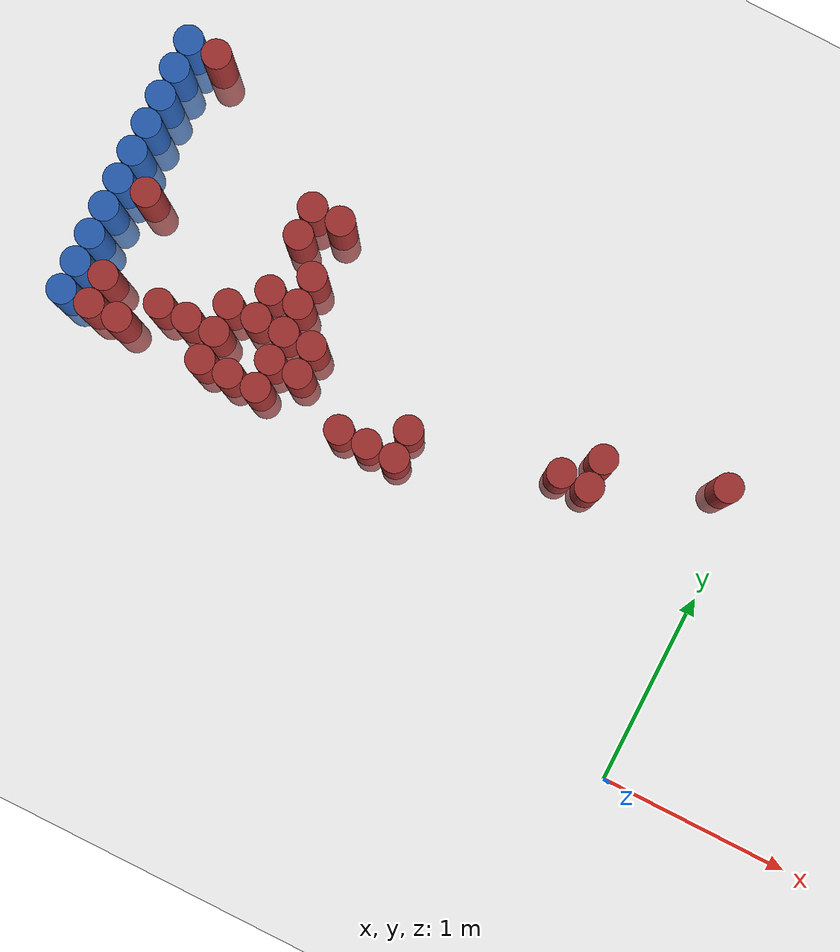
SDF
<sdf version="1.6">
 <world name="default">
  <model name="ground_plane">
   <static>1</static>
   <link name="link">
    <collision name="collision">
     <geometry><plane><normal>0 0 1</normal><size>100 100</size></plane></geometry>
     <surface><friction><ode><mu>100</mu><mu2>50</mu2></ode></friction></surface>
    </collision>
    <visual name="visual">
     <cast_shadows>0</cast_shadows>
     <geometry><plane><normal>0 0 1</normal><size>100 100</size></plane></geometry>
     <material>
      <script><uri>file://media/materials/scripts/gazebo.material</uri><name>Gazebo/Grey</name></script>
     </material>
    </visual>
   </link>
  </model>
  <model name="unit_cylinder_127">
   <static>1</static>
   <pose>-3.425000 0.925000 0.000000 0.000000 0.000000 0.000000</pose>
   <link name="link">
    <inertial>
     <mass>1</mass>
     <inertia><ixx>0.145833</ixx><ixy>0</ixy><ixz>0</ixz><iyy>0.145833</iyy><iyz>0</iyz><izz>0.125</izz></inertia>
    </inertial>
    <collision name="collision">
     <geometry><cylinder><radius>0.075000</radius><length>1.5</length></cylinder></geometry>
    </collision>
    <visual name="visual">
     <geometry><cylinder><radius>0.075000</radius><length>1.5</length></cylinder></geometry>
     <material>
      <ambient>0.152000 0.379000 0.720000 1</ambient>
      <diffuse>0.152000 0.379000 0.720000 1</diffuse>
     </material>
     <material>
      <script><name>Gazebo/Grey</name><uri>file://media/materials/scripts/gazebo.material</uri></script>
     </material>
    </visual>
   </link>
  </model>
  <model name="unit_cylinder_129">
   <static>1</static>
   <pose>-3.425000 1.075000 0.000000 0.000000 0.000000 0.000000</pose>
   <link name="link">
    <inertial>
     <mass>1</mass>
     <inertia><ixx>0.145833</ixx><ixy>0</ixy><ixz>0</ixz><iyy>0.145833</iyy><iyz>0</iyz><izz>0.125</izz></inertia>
    </inertial>
    <collision name="collision">
     <geometry><cylinder><radius>0.075000</radius><length>1.5</length></cylinder></geometry>
    </collision>
    <visual name="visual">
     <geometry><cylinder><radius>0.075000</radius><length>1.5</length></cylinder></geometry>
     <material>
      <ambient>0.152000 0.379000 0.720000 1</ambient>
      <diffuse>0.152000 0.379000 0.720000 1</diffuse>
     </material>
     <material>
      <script><name>Gazebo/Grey</name><uri>file://media/materials/scripts/gazebo.material</uri></script>
     </material>
    </visual>
   </link>
  </model>
  <model name="unit_cylinder_131">
   <static>1</static>
   <pose>-3.425000 1.225000 0.000000 0.000000 0.000000 0.000000</pose>
   <link name="link">
    <inertial>
     <mass>1</mass>
     <inertia><ixx>0.145833</ixx><ixy>0</ixy><ixz>0</ixz><iyy>0.145833</iyy><iyz>0</iyz><izz>0.125</izz></inertia>
    </inertial>
    <collision name="collision">
     <geometry><cylinder><radius>0.075000</radius><length>1.5</length></cylinder></geometry>
    </collision>
    <visual name="visual">
     <geometry><cylinder><radius>0.075000</radius><length>1.5</length></cylinder></geometry>
     <material>
      <ambient>0.152000 0.379000 0.720000 1</ambient>
      <diffuse>0.152000 0.379000 0.720000 1</diffuse>
     </material>
     <material>
      <script><name>Gazebo/Grey</name><uri>file://media/materials/scripts/gazebo.material</uri></script>
     </material>
    </visual>
   </link>
  </model>
  <model name="unit_cylinder_133">
   <static>1</static>
   <pose>-3.425000 1.375000 0.000000 0.000000 0.000000 0.000000</pose>
   <link name="link">
    <inertial>
     <mass>1</mass>
     <inertia><ixx>0.145833</ixx><ixy>0</ixy><ixz>0</ixz><iyy>0.145833</iyy><iyz>0</iyz><izz>0.125</izz></inertia>
    </inertial>
    <collision name="collision">
     <geometry><cylinder><radius>0.075000</radius><length>1.5</length></cylinder></geometry>
    </collision>
    <visual name="visual">
     <geometry><cylinder><radius>0.075000</radius><length>1.5</length></cylinder></geometry>
     <material>
      <ambient>0.152000 0.379000 0.720000 1</ambient>
      <diffuse>0.152000 0.379000 0.720000 1</diffuse>
     </material>
     <material>
      <script><name>Gazebo/Grey</name><uri>file://media/materials/scripts/gazebo.material</uri></script>
     </material>
    </visual>
   </link>
  </model>
  <model name="unit_cylinder_135">
   <static>1</static>
   <pose>-3.425000 1.525000 0.000000 0.000000 0.000000 0.000000</pose>
   <link name="link">
    <inertial>
     <mass>1</mass>
     <inertia><ixx>0.145833</ixx><ixy>0</ixy><ixz>0</ixz><iyy>0.145833</iyy><iyz>0</iyz><izz>0.125</izz></inertia>
    </inertial>
    <collision name="collision">
     <geometry><cylinder><radius>0.075000</radius><length>1.5</length></cylinder></geometry>
    </collision>
    <visual name="visual">
     <geometry><cylinder><radius>0.075000</radius><length>1.5</length></cylinder></geometry>
     <material>
      <ambient>0.152000 0.379000 0.720000 1</ambient>
      <diffuse>0.152000 0.379000 0.720000 1</diffuse>
     </material>
     <material>
      <script><name>Gazebo/Grey</name><uri>file://media/materials/scripts/gazebo.material</uri></script>
     </material>
    </visual>
   </link>
  </model>
  <model name="unit_cylinder_137">
   <static>1</static>
   <pose>-3.425000 1.675000 0.000000 0.000000 0.000000 0.000000</pose>
   <link name="link">
    <inertial>
     <mass>1</mass>
     <inertia><ixx>0.145833</ixx><ixy>0</ixy><ixz>0</ixz><iyy>0.145833</iyy><iyz>0</iyz><izz>0.125</izz></inertia>
    </inertial>
    <collision name="collision">
     <geometry><cylinder><radius>0.075000</radius><length>1.5</length></cylinder></geometry>
    </collision>
    <visual name="visual">
     <geometry><cylinder><radius>0.075000</radius><length>1.5</length></cylinder></geometry>
     <material>
      <ambient>0.152000 0.379000 0.720000 1</ambient>
      <diffuse>0.152000 0.379000 0.720000 1</diffuse>
     </material>
     <material>
      <script><name>Gazebo/Grey</name><uri>file://media/materials/scripts/gazebo.material</uri></script>
     </material>
    </visual>
   </link>
  </model>
  <model name="unit_cylinder_139">
   <static>1</static>
   <pose>-3.425000 1.825000 0.000000 0.000000 0.000000 0.000000</pose>
   <link name="link">
    <inertial>
     <mass>1</mass>
     <inertia><ixx>0.145833</ixx><ixy>0</ixy><ixz>0</ixz><iyy>0.145833</iyy><iyz>0</iyz><izz>0.125</izz></inertia>
    </inertial>
    <collision name="collision">
     <geometry><cylinder><radius>0.075000</radius><length>1.5</length></cylinder></geometry>
    </collision>
    <visual name="visual">
     <geometry><cylinder><radius>0.075000</radius><length>1.5</length></cylinder></geometry>
     <material>
      <ambient>0.152000 0.379000 0.720000 1</ambient>
      <diffuse>0.152000 0.379000 0.720000 1</diffuse>
     </material>
     <material>
      <script><name>Gazebo/Grey</name><uri>file://media/materials/scripts/gazebo.material</uri></script>
     </material>
    </visual>
   </link>
  </model>
  <model name="unit_cylinder_141">
   <static>1</static>
   <pose>-3.425000 1.975000 0.000000 0.000000 0.000000 0.000000</pose>
   <link name="link">
    <inertial>
     <mass>1</mass>
     <inertia><ixx>0.145833</ixx><ixy>0</ixy><ixz>0</ixz><iyy>0.145833</iyy><iyz>0</iyz><izz>0.125</izz></inertia>
    </inertial>
    <collision name="collision">
     <geometry><cylinder><radius>0.075000</radius><length>1.5</length></cylinder></geometry>
    </collision>
    <visual name="visual">
     <geometry><cylinder><radius>0.075000</radius><length>1.5</length></cylinder></geometry>
     <material>
      <ambient>0.152000 0.379000 0.720000 1</ambient>
      <diffuse>0.152000 0.379000 0.720000 1</diffuse>
     </material>
     <material>
      <script><name>Gazebo/Grey</name><uri>file://media/materials/scripts/gazebo.material</uri></script>
     </material>
    </visual>
   </link>
  </model>
  <model name="unit_cylinder_143">
   <static>1</static>
   <pose>-3.425000 2.125000 0.000000 0.000000 0.000000 0.000000</pose>
   <link name="link">
    <inertial>
     <mass>1</mass>
     <inertia><ixx>0.145833</ixx><ixy>0</ixy><ixz>0</ixz><iyy>0.145833</iyy><iyz>0</iyz><izz>0.125</izz></inertia>
    </inertial>
    <collision name="collision">
     <geometry><cylinder><radius>0.075000</radius><length>1.5</length></cylinder></geometry>
    </collision>
    <visual name="visual">
     <geometry><cylinder><radius>0.075000</radius><length>1.5</length></cylinder></geometry>
     <material>
      <ambient>0.152000 0.379000 0.720000 1</ambient>
      <diffuse>0.152000 0.379000 0.720000 1</diffuse>
     </material>
     <material>
      <script><name>Gazebo/Grey</name><uri>file://media/materials/scripts/gazebo.material</uri></script>
     </material>
    </visual>
   </link>
  </model>
  <model name="unit_cylinder_145">
   <static>1</static>
   <pose>-3.425000 2.275000 0.000000 0.000000 0.000000 0.000000</pose>
   <link name="link">
    <inertial>
     <mass>1</mass>
     <inertia><ixx>0.145833</ixx><ixy>0</ixy><ixz>0</ixz><iyy>0.145833</iyy><iyz>0</iyz><izz>0.125</izz></inertia>
    </inertial>
    <collision name="collision">
     <geometry><cylinder><radius>0.075000</radius><length>1.5</length></cylinder></geometry>
    </collision>
    <visual name="visual">
     <geometry><cylinder><radius>0.075000</radius><length>1.5</length></cylinder></geometry>
     <material>
      <ambient>0.152000 0.379000 0.720000 1</ambient>
      <diffuse>0.152000 0.379000 0.720000 1</diffuse>
     </material>
     <material>
      <script><name>Gazebo/Grey</name><uri>file://media/materials/scripts/gazebo.material</uri></script>
     </material>
    </visual>
   </link>
  </model>
  <model name="unit_cylinder_227">
   <static>1</static>
   <pose>-3.425000 0.925000 0.000000 0.000000 0.000000 0.000000</pose>
   <link name="link">
    <inertial>
     <mass>1</mass>
     <inertia><ixx>0.145833</ixx><ixy>0</ixy><ixz>0</ixz><iyy>0.145833</iyy><iyz>0</iyz><izz>0.125</izz></inertia>
    </inertial>
    <collision name="collision">
     <geometry><cylinder><radius>0.075000</radius><length>1.5</length></cylinder></geometry>
    </collision>
    <visual name="visual">
     <geometry><cylinder><radius>0.075000</radius><length>1.5</length></cylinder></geometry>
     <material>
      <ambient>0.152000 0.379000 0.720000 1</ambient>
      <diffuse>0.152000 0.379000 0.720000 1</diffuse>
     </material>
     <material>
      <script><name>Gazebo/Grey</name><uri>file://media/materials/scripts/gazebo.material</uri></script>
     </material>
    </visual>
   </link>
  </model>
  <model name="unit_cylinder_228">
   <static>1</static>
   <pose>-3.425000 1.075000 0.000000 0.000000 0.000000 0.000000</pose>
   <link name="link">
    <inertial>
     <mass>1</mass>
     <inertia><ixx>0.145833</ixx><ixy>0</ixy><ixz>0</ixz><iyy>0.145833</iyy><iyz>0</iyz><izz>0.125</izz></inertia>
    </inertial>
    <collision name="collision">
     <geometry><cylinder><radius>0.075000</radius><length>1.5</length></cylinder></geometry>
    </collision>
    <visual name="visual">
     <geometry><cylinder><radius>0.075000</radius><length>1.5</length></cylinder></geometry>
     <material>
      <ambient>0.152000 0.379000 0.720000 1</ambient>
      <diffuse>0.152000 0.379000 0.720000 1</diffuse>
     </material>
     <material>
      <script><name>Gazebo/Grey</name><uri>file://media/materials/scripts/gazebo.material</uri></script>
     </material>
    </visual>
   </link>
  </model>
  <model name="unit_cylinder_229">
   <static>1</static>
   <pose>-3.425000 1.225000 0.000000 0.000000 0.000000 0.000000</pose>
   <link name="link">
    <inertial>
     <mass>1</mass>
     <inertia><ixx>0.145833</ixx><ixy>0</ixy><ixz>0</ixz><iyy>0.145833</iyy><iyz>0</iyz><izz>0.125</izz></inertia>
    </inertial>
    <collision name="collision">
     <geometry><cylinder><radius>0.075000</radius><length>1.5</length></cylinder></geometry>
    </collision>
    <visual name="visual">
     <geometry><cylinder><radius>0.075000</radius><length>1.5</length></cylinder></geometry>
     <material>
      <ambient>0.152000 0.379000 0.720000 1</ambient>
      <diffuse>0.152000 0.379000 0.720000 1</diffuse>
     </material>
     <material>
      <script><name>Gazebo/Grey</name><uri>file://media/materials/scripts/gazebo.material</uri></script>
     </material>
    </visual>
   </link>
  </model>
  <model name="unit_cylinder_230">
   <static>1</static>
   <pose>-3.425000 1.375000 0.000000 0.000000 0.000000 0.000000</pose>
   <link name="link">
    <inertial>
     <mass>1</mass>
     <inertia><ixx>0.145833</ixx><ixy>0</ixy><ixz>0</ixz><iyy>0.145833</iyy><iyz>0</iyz><izz>0.125</izz></inertia>
    </inertial>
    <collision name="collision">
     <geometry><cylinder><radius>0.075000</radius><length>1.5</length></cylinder></geometry>
    </collision>
    <visual name="visual">
     <geometry><cylinder><radius>0.075000</radius><length>1.5</length></cylinder></geometry>
     <material>
      <ambient>0.152000 0.379000 0.720000 1</ambient>
      <diffuse>0.152000 0.379000 0.720000 1</diffuse>
     </material>
     <material>
      <script><name>Gazebo/Grey</name><uri>file://media/materials/scripts/gazebo.material</uri></script>
     </material>
    </visual>
   </link>
  </model>
  <model name="unit_cylinder_231">
   <static>1</static>
   <pose>-3.425000 1.525000 0.000000 0.000000 0.000000 0.000000</pose>
   <link name="link">
    <inertial>
     <mass>1</mass>
     <inertia><ixx>0.145833</ixx><ixy>0</ixy><ixz>0</ixz><iyy>0.145833</iyy><iyz>0</iyz><izz>0.125</izz></inertia>
    </inertial>
    <collision name="collision">
     <geometry><cylinder><radius>0.075000</radius><length>1.5</length></cylinder></geometry>
    </collision>
    <visual name="visual">
     <geometry><cylinder><radius>0.075000</radius><length>1.5</length></cylinder></geometry>
     <material>
      <ambient>0.152000 0.379000 0.720000 1</ambient>
      <diffuse>0.152000 0.379000 0.720000 1</diffuse>
     </material>
     <material>
      <script><name>Gazebo/Grey</name><uri>file://media/materials/scripts/gazebo.material</uri></script>
     </material>
    </visual>
   </link>
  </model>
  <model name="unit_cylinder_232">
   <static>1</static>
   <pose>-3.425000 1.675000 0.000000 0.000000 0.000000 0.000000</pose>
   <link name="link">
    <inertial>
     <mass>1</mass>
     <inertia><ixx>0.145833</ixx><ixy>0</ixy><ixz>0</ixz><iyy>0.145833</iyy><iyz>0</iyz><izz>0.125</izz></inertia>
    </inertial>
    <collision name="collision">
     <geometry><cylinder><radius>0.075000</radius><length>1.5</length></cylinder></geometry>
    </collision>
    <visual name="visual">
     <geometry><cylinder><radius>0.075000</radius><length>1.5</length></cylinder></geometry>
     <material>
      <ambient>0.152000 0.379000 0.720000 1</ambient>
      <diffuse>0.152000 0.379000 0.720000 1</diffuse>
     </material>
     <material>
      <script><name>Gazebo/Grey</name><uri>file://media/materials/scripts/gazebo.material</uri></script>
     </material>
    </visual>
   </link>
  </model>
  <model name="unit_cylinder_233">
   <static>1</static>
   <pose>-3.425000 1.825000 0.000000 0.000000 0.000000 0.000000</pose>
   <link name="link">
    <inertial>
     <mass>1</mass>
     <inertia><ixx>0.145833</ixx><ixy>0</ixy><ixz>0</ixz><iyy>0.145833</iyy><iyz>0</iyz><izz>0.125</izz></inertia>
    </inertial>
    <collision name="collision">
     <geometry><cylinder><radius>0.075000</radius><length>1.5</length></cylinder></geometry>
    </collision>
    <visual name="visual">
     <geometry><cylinder><radius>0.075000</radius><length>1.5</length></cylinder></geometry>
     <material>
      <ambient>0.152000 0.379000 0.720000 1</ambient>
      <diffuse>0.152000 0.379000 0.720000 1</diffuse>
     </material>
     <material>
      <script><name>Gazebo/Grey</name><uri>file://media/materials/scripts/gazebo.material</uri></script>
     </material>
    </visual>
   </link>
  </model>
  <model name="unit_cylinder_234">
   <static>1</static>
   <pose>-3.425000 1.975000 0.000000 0.000000 0.000000 0.000000</pose>
   <link name="link">
    <inertial>
     <mass>1</mass>
     <inertia><ixx>0.145833</ixx><ixy>0</ixy><ixz>0</ixz><iyy>0.145833</iyy><iyz>0</iyz><izz>0.125</izz></inertia>
    </inertial>
    <collision name="collision">
     <geometry><cylinder><radius>0.075000</radius><length>1.5</length></cylinder></geometry>
    </collision>
    <visual name="visual">
     <geometry><cylinder><radius>0.075000</radius><length>1.5</length></cylinder></geometry>
     <material>
      <ambient>0.152000 0.379000 0.720000 1</ambient>
      <diffuse>0.152000 0.379000 0.720000 1</diffuse>
     </material>
     <material>
      <script><name>Gazebo/Grey</name><uri>file://media/materials/scripts/gazebo.material</uri></script>
     </material>
    </visual>
   </link>
  </model>
  <model name="unit_cylinder_235">
   <static>1</static>
   <pose>-3.425000 2.125000 0.000000 0.000000 0.000000 0.000000</pose>
   <link name="link">
    <inertial>
     <mass>1</mass>
     <inertia><ixx>0.145833</ixx><ixy>0</ixy><ixz>0</ixz><iyy>0.145833</iyy><iyz>0</iyz><izz>0.125</izz></inertia>
    </inertial>
    <collision name="collision">
     <geometry><cylinder><radius>0.075000</radius><length>1.5</length></cylinder></geometry>
    </collision>
    <visual name="visual">
     <geometry><cylinder><radius>0.075000</radius><length>1.5</length></cylinder></geometry>
     <material>
      <ambient>0.152000 0.379000 0.720000 1</ambient>
      <diffuse>0.152000 0.379000 0.720000 1</diffuse>
     </material>
     <material>
      <script><name>Gazebo/Grey</name><uri>file://media/materials/scripts/gazebo.material</uri></script>
     </material>
    </visual>
   </link>
  </model>
  <model name="unit_cylinder_236">
   <static>1</static>
   <pose>-3.425000 2.275000 0.000000 0.000000 0.000000 0.000000</pose>
   <link name="link">
    <inertial>
     <mass>1</mass>
     <inertia><ixx>0.145833</ixx><ixy>0</ixy><ixz>0</ixz><iyy>0.145833</iyy><iyz>0</iyz><izz>0.125</izz></inertia>
    </inertial>
    <collision name="collision">
     <geometry><cylinder><radius>0.075000</radius><length>1.5</length></cylinder></geometry>
    </collision>
    <visual name="visual">
     <geometry><cylinder><radius>0.075000</radius><length>1.5</length></cylinder></geometry>
     <material>
      <ambient>0.152000 0.379000 0.720000 1</ambient>
      <diffuse>0.152000 0.379000 0.720000 1</diffuse>
     </material>
     <material>
      <script><name>Gazebo/Grey</name><uri>file://media/materials/scripts/gazebo.material</uri></script>
     </material>
    </visual>
   </link>
  </model>
  <model name="unit_cylinder_264">
   <static>1</static>
   <pose>-3.275000 0.925000 0.000000 0.000000 0.000000 0.000000</pose>
   <link name="link">
    <inertial>
     <mass>1</mass>
     <inertia><ixx>0.145833</ixx><ixy>0</ixy><ixz>0</ixz><iyy>0.145833</iyy><iyz>0</iyz><izz>0.125</izz></inertia>
    </inertial>
    <collision name="collision">
     <geometry><cylinder><radius>0.075000</radius><length>1.5</length></cylinder></geometry>
    </collision>
    <visual name="visual">
     <geometry><cylinder><radius>0.075000</radius><length>1.5</length></cylinder></geometry>
     <material>
      <ambient>0.648000 0.192000 0.192000 1</ambient>
      <diffuse>0.648000 0.192000 0.192000 1</diffuse>
     </material>
     <material>
      <script><name>Gazebo/Grey</name><uri>file://media/materials/scripts/gazebo.material</uri></script>
     </material>
    </visual>
   </link>
  </model>
  <model name="unit_cylinder_265">
   <static>1</static>
   <pose>-3.275000 1.075000 0.000000 0.000000 0.000000 0.000000</pose>
   <link name="link">
    <inertial>
     <mass>1</mass>
     <inertia><ixx>0.145833</ixx><ixy>0</ixy><ixz>0</ixz><iyy>0.145833</iyy><iyz>0</iyz><izz>0.125</izz></inertia>
    </inertial>
    <collision name="collision">
     <geometry><cylinder><radius>0.075000</radius><length>1.5</length></cylinder></geometry>
    </collision>
    <visual name="visual">
     <geometry><cylinder><radius>0.075000</radius><length>1.5</length></cylinder></geometry>
     <material>
      <ambient>0.648000 0.192000 0.192000 1</ambient>
      <diffuse>0.648000 0.192000 0.192000 1</diffuse>
     </material>
     <material>
      <script><name>Gazebo/Grey</name><uri>file://media/materials/scripts/gazebo.material</uri></script>
     </material>
    </visual>
   </link>
  </model>
  <model name="unit_cylinder_266">
   <static>1</static>
   <pose>-3.275000 1.525000 0.000000 0.000000 0.000000 0.000000</pose>
   <link name="link">
    <inertial>
     <mass>1</mass>
     <inertia><ixx>0.145833</ixx><ixy>0</ixy><ixz>0</ixz><iyy>0.145833</iyy><iyz>0</iyz><izz>0.125</izz></inertia>
    </inertial>
    <collision name="collision">
     <geometry><cylinder><radius>0.075000</radius><length>1.5</length></cylinder></geometry>
    </collision>
    <visual name="visual">
     <geometry><cylinder><radius>0.075000</radius><length>1.5</length></cylinder></geometry>
     <material>
      <ambient>0.648000 0.192000 0.192000 1</ambient>
      <diffuse>0.648000 0.192000 0.192000 1</diffuse>
     </material>
     <material>
      <script><name>Gazebo/Grey</name><uri>file://media/materials/scripts/gazebo.material</uri></script>
     </material>
    </visual>
   </link>
  </model>
  <model name="unit_cylinder_267">
   <static>1</static>
   <pose>-3.275000 2.275000 0.000000 0.000000 0.000000 0.000000</pose>
   <link name="link">
    <inertial>
     <mass>1</mass>
     <inertia><ixx>0.145833</ixx><ixy>0</ixy><ixz>0</ixz><iyy>0.145833</iyy><iyz>0</iyz><izz>0.125</izz></inertia>
    </inertial>
    <collision name="collision">
     <geometry><cylinder><radius>0.075000</radius><length>1.5</length></cylinder></geometry>
    </collision>
    <visual name="visual">
     <geometry><cylinder><radius>0.075000</radius><length>1.5</length></cylinder></geometry>
     <material>
      <ambient>0.648000 0.192000 0.192000 1</ambient>
      <diffuse>0.648000 0.192000 0.192000 1</diffuse>
     </material>
     <material>
      <script><name>Gazebo/Grey</name><uri>file://media/materials/scripts/gazebo.material</uri></script>
     </material>
    </visual>
   </link>
  </model>
  <model name="unit_cylinder_280">
   <static>1</static>
   <pose>-3.125000 0.925000 0.000000 0.000000 0.000000 0.000000</pose>
   <link name="link">
    <inertial>
     <mass>1</mass>
     <inertia><ixx>0.145833</ixx><ixy>0</ixy><ixz>0</ixz><iyy>0.145833</iyy><iyz>0</iyz><izz>0.125</izz></inertia>
    </inertial>
    <collision name="collision">
     <geometry><cylinder><radius>0.075000</radius><length>1.5</length></cylinder></geometry>
    </collision>
    <visual name="visual">
     <geometry><cylinder><radius>0.075000</radius><length>1.5</length></cylinder></geometry>
     <material>
      <ambient>0.648000 0.192000 0.192000 1</ambient>
      <diffuse>0.648000 0.192000 0.192000 1</diffuse>
     </material>
     <material>
      <script><name>Gazebo/Grey</name><uri>file://media/materials/scripts/gazebo.material</uri></script>
     </material>
    </visual>
   </link>
  </model>
  <model name="unit_cylinder_288">
   <static>1</static>
   <pose>-2.975000 1.075000 0.000000 0.000000 0.000000 0.000000</pose>
   <link name="link">
    <inertial>
     <mass>1</mass>
     <inertia><ixx>0.145833</ixx><ixy>0</ixy><ixz>0</ixz><iyy>0.145833</iyy><iyz>0</iyz><izz>0.125</izz></inertia>
    </inertial>
    <collision name="collision">
     <geometry><cylinder><radius>0.075000</radius><length>1.5</length></cylinder></geometry>
    </collision>
    <visual name="visual">
     <geometry><cylinder><radius>0.075000</radius><length>1.5</length></cylinder></geometry>
     <material>
      <ambient>0.648000 0.192000 0.192000 1</ambient>
      <diffuse>0.648000 0.192000 0.192000 1</diffuse>
     </material>
     <material>
      <script><name>Gazebo/Grey</name><uri>file://media/materials/scripts/gazebo.material</uri></script>
     </material>
    </visual>
   </link>
  </model>
  <model name="unit_cylinder_297">
   <static>1</static>
   <pose>-2.825000 1.075000 0.000000 0.000000 0.000000 0.000000</pose>
   <link name="link">
    <inertial>
     <mass>1</mass>
     <inertia><ixx>0.145833</ixx><ixy>0</ixy><ixz>0</ixz><iyy>0.145833</iyy><iyz>0</iyz><izz>0.125</izz></inertia>
    </inertial>
    <collision name="collision">
     <geometry><cylinder><radius>0.075000</radius><length>1.5</length></cylinder></geometry>
    </collision>
    <visual name="visual">
     <geometry><cylinder><radius>0.075000</radius><length>1.5</length></cylinder></geometry>
     <material>
      <ambient>0.648000 0.192000 0.192000 1</ambient>
      <diffuse>0.648000 0.192000 0.192000 1</diffuse>
     </material>
     <material>
      <script><name>Gazebo/Grey</name><uri>file://media/materials/scripts/gazebo.material</uri></script>
     </material>
    </visual>
   </link>
  </model>
  <model name="unit_cylinder_306">
   <static>1</static>
   <pose>-2.675000 0.925000 0.000000 0.000000 0.000000 0.000000</pose>
   <link name="link">
    <inertial>
     <mass>1</mass>
     <inertia><ixx>0.145833</ixx><ixy>0</ixy><ixz>0</ixz><iyy>0.145833</iyy><iyz>0</iyz><izz>0.125</izz></inertia>
    </inertial>
    <collision name="collision">
     <geometry><cylinder><radius>0.075000</radius><length>1.5</length></cylinder></geometry>
    </collision>
    <visual name="visual">
     <geometry><cylinder><radius>0.075000</radius><length>1.5</length></cylinder></geometry>
     <material>
      <ambient>0.648000 0.192000 0.192000 1</ambient>
      <diffuse>0.648000 0.192000 0.192000 1</diffuse>
     </material>
     <material>
      <script><name>Gazebo/Grey</name><uri>file://media/materials/scripts/gazebo.material</uri></script>
     </material>
    </visual>
   </link>
  </model>
  <model name="unit_cylinder_307">
   <static>1</static>
   <pose>-2.675000 1.075000 0.000000 0.000000 0.000000 0.000000</pose>
   <link name="link">
    <inertial>
     <mass>1</mass>
     <inertia><ixx>0.145833</ixx><ixy>0</ixy><ixz>0</ixz><iyy>0.145833</iyy><iyz>0</iyz><izz>0.125</izz></inertia>
    </inertial>
    <collision name="collision">
     <geometry><cylinder><radius>0.075000</radius><length>1.5</length></cylinder></geometry>
    </collision>
    <visual name="visual">
     <geometry><cylinder><radius>0.075000</radius><length>1.5</length></cylinder></geometry>
     <material>
      <ambient>0.648000 0.192000 0.192000 1</ambient>
      <diffuse>0.648000 0.192000 0.192000 1</diffuse>
     </material>
     <material>
      <script><name>Gazebo/Grey</name><uri>file://media/materials/scripts/gazebo.material</uri></script>
     </material>
    </visual>
   </link>
  </model>
  <model name="unit_cylinder_308">
   <static>1</static>
   <pose>-2.675000 1.225000 0.000000 0.000000 0.000000 0.000000</pose>
   <link name="link">
    <inertial>
     <mass>1</mass>
     <inertia><ixx>0.145833</ixx><ixy>0</ixy><ixz>0</ixz><iyy>0.145833</iyy><iyz>0</iyz><izz>0.125</izz></inertia>
    </inertial>
    <collision name="collision">
     <geometry><cylinder><radius>0.075000</radius><length>1.5</length></cylinder></geometry>
    </collision>
    <visual name="visual">
     <geometry><cylinder><radius>0.075000</radius><length>1.5</length></cylinder></geometry>
     <material>
      <ambient>0.648000 0.192000 0.192000 1</ambient>
      <diffuse>0.648000 0.192000 0.192000 1</diffuse>
     </material>
     <material>
      <script><name>Gazebo/Grey</name><uri>file://media/materials/scripts/gazebo.material</uri></script>
     </material>
    </visual>
   </link>
  </model>
  <model name="unit_cylinder_313">
   <static>1</static>
   <pose>-2.525000 0.925000 0.000000 0.000000 0.000000 0.000000</pose>
   <link name="link">
    <inertial>
     <mass>1</mass>
     <inertia><ixx>0.145833</ixx><ixy>0</ixy><ixz>0</ixz><iyy>0.145833</iyy><iyz>0</iyz><izz>0.125</izz></inertia>
    </inertial>
    <collision name="collision">
     <geometry><cylinder><radius>0.075000</radius><length>1.5</length></cylinder></geometry>
    </collision>
    <visual name="visual">
     <geometry><cylinder><radius>0.075000</radius><length>1.5</length></cylinder></geometry>
     <material>
      <ambient>0.648000 0.192000 0.192000 1</ambient>
      <diffuse>0.648000 0.192000 0.192000 1</diffuse>
     </material>
     <material>
      <script><name>Gazebo/Grey</name><uri>file://media/materials/scripts/gazebo.material</uri></script>
     </material>
    </visual>
   </link>
  </model>
  <model name="unit_cylinder_314">
   <static>1</static>
   <pose>-2.525000 1.225000 0.000000 0.000000 0.000000 0.000000</pose>
   <link name="link">
    <inertial>
     <mass>1</mass>
     <inertia><ixx>0.145833</ixx><ixy>0</ixy><ixz>0</ixz><iyy>0.145833</iyy><iyz>0</iyz><izz>0.125</izz></inertia>
    </inertial>
    <collision name="collision">
     <geometry><cylinder><radius>0.075000</radius><length>1.5</length></cylinder></geometry>
    </collision>
    <visual name="visual">
     <geometry><cylinder><radius>0.075000</radius><length>1.5</length></cylinder></geometry>
     <material>
      <ambient>0.648000 0.192000 0.192000 1</ambient>
      <diffuse>0.648000 0.192000 0.192000 1</diffuse>
     </material>
     <material>
      <script><name>Gazebo/Grey</name><uri>file://media/materials/scripts/gazebo.material</uri></script>
     </material>
    </visual>
   </link>
  </model>
  <model name="unit_cylinder_315">
   <static>1</static>
   <pose>-2.525000 1.375000 0.000000 0.000000 0.000000 0.000000</pose>
   <link name="link">
    <inertial>
     <mass>1</mass>
     <inertia><ixx>0.145833</ixx><ixy>0</ixy><ixz>0</ixz><iyy>0.145833</iyy><iyz>0</iyz><izz>0.125</izz></inertia>
    </inertial>
    <collision name="collision">
     <geometry><cylinder><radius>0.075000</radius><length>1.5</length></cylinder></geometry>
    </collision>
    <visual name="visual">
     <geometry><cylinder><radius>0.075000</radius><length>1.5</length></cylinder></geometry>
     <material>
      <ambient>0.648000 0.192000 0.192000 1</ambient>
      <diffuse>0.648000 0.192000 0.192000 1</diffuse>
     </material>
     <material>
      <script><name>Gazebo/Grey</name><uri>file://media/materials/scripts/gazebo.material</uri></script>
     </material>
    </visual>
   </link>
  </model>
  <model name="unit_cylinder_316">
   <static>1</static>
   <pose>-2.525000 1.675000 0.000000 0.000000 0.000000 0.000000</pose>
   <link name="link">
    <inertial>
     <mass>1</mass>
     <inertia><ixx>0.145833</ixx><ixy>0</ixy><ixz>0</ixz><iyy>0.145833</iyy><iyz>0</iyz><izz>0.125</izz></inertia>
    </inertial>
    <collision name="collision">
     <geometry><cylinder><radius>0.075000</radius><length>1.5</length></cylinder></geometry>
    </collision>
    <visual name="visual">
     <geometry><cylinder><radius>0.075000</radius><length>1.5</length></cylinder></geometry>
     <material>
      <ambient>0.648000 0.192000 0.192000 1</ambient>
      <diffuse>0.648000 0.192000 0.192000 1</diffuse>
     </material>
     <material>
      <script><name>Gazebo/Grey</name><uri>file://media/materials/scripts/gazebo.material</uri></script>
     </material>
    </visual>
   </link>
  </model>
  <model name="unit_cylinder_317">
   <static>1</static>
   <pose>-2.525000 1.825000 0.000000 0.000000 0.000000 0.000000</pose>
   <link name="link">
    <inertial>
     <mass>1</mass>
     <inertia><ixx>0.145833</ixx><ixy>0</ixy><ixz>0</ixz><iyy>0.145833</iyy><iyz>0</iyz><izz>0.125</izz></inertia>
    </inertial>
    <collision name="collision">
     <geometry><cylinder><radius>0.075000</radius><length>1.5</length></cylinder></geometry>
    </collision>
    <visual name="visual">
     <geometry><cylinder><radius>0.075000</radius><length>1.5</length></cylinder></geometry>
     <material>
      <ambient>0.648000 0.192000 0.192000 1</ambient>
      <diffuse>0.648000 0.192000 0.192000 1</diffuse>
     </material>
     <material>
      <script><name>Gazebo/Grey</name><uri>file://media/materials/scripts/gazebo.material</uri></script>
     </material>
    </visual>
   </link>
  </model>
  <model name="unit_cylinder_321">
   <static>1</static>
   <pose>-2.375000 0.925000 0.000000 0.000000 0.000000 0.000000</pose>
   <link name="link">
    <inertial>
     <mass>1</mass>
     <inertia><ixx>0.145833</ixx><ixy>0</ixy><ixz>0</ixz><iyy>0.145833</iyy><iyz>0</iyz><izz>0.125</izz></inertia>
    </inertial>
    <collision name="collision">
     <geometry><cylinder><radius>0.075000</radius><length>1.5</length></cylinder></geometry>
    </collision>
    <visual name="visual">
     <geometry><cylinder><radius>0.075000</radius><length>1.5</length></cylinder></geometry>
     <material>
      <ambient>0.648000 0.192000 0.192000 1</ambient>
      <diffuse>0.648000 0.192000 0.192000 1</diffuse>
     </material>
     <material>
      <script><name>Gazebo/Grey</name><uri>file://media/materials/scripts/gazebo.material</uri></script>
     </material>
    </visual>
   </link>
  </model>
  <model name="unit_cylinder_322">
   <static>1</static>
   <pose>-2.375000 1.075000 0.000000 0.000000 0.000000 0.000000</pose>
   <link name="link">
    <inertial>
     <mass>1</mass>
     <inertia><ixx>0.145833</ixx><ixy>0</ixy><ixz>0</ixz><iyy>0.145833</iyy><iyz>0</iyz><izz>0.125</izz></inertia>
    </inertial>
    <collision name="collision">
     <geometry><cylinder><radius>0.075000</radius><length>1.5</length></cylinder></geometry>
    </collision>
    <visual name="visual">
     <geometry><cylinder><radius>0.075000</radius><length>1.5</length></cylinder></geometry>
     <material>
      <ambient>0.648000 0.192000 0.192000 1</ambient>
      <diffuse>0.648000 0.192000 0.192000 1</diffuse>
     </material>
     <material>
      <script><name>Gazebo/Grey</name><uri>file://media/materials/scripts/gazebo.material</uri></script>
     </material>
    </visual>
   </link>
  </model>
  <model name="unit_cylinder_323">
   <static>1</static>
   <pose>-2.375000 1.225000 0.000000 0.000000 0.000000 0.000000</pose>
   <link name="link">
    <inertial>
     <mass>1</mass>
     <inertia><ixx>0.145833</ixx><ixy>0</ixy><ixz>0</ixz><iyy>0.145833</iyy><iyz>0</iyz><izz>0.125</izz></inertia>
    </inertial>
    <collision name="collision">
     <geometry><cylinder><radius>0.075000</radius><length>1.5</length></cylinder></geometry>
    </collision>
    <visual name="visual">
     <geometry><cylinder><radius>0.075000</radius><length>1.5</length></cylinder></geometry>
     <material>
      <ambient>0.648000 0.192000 0.192000 1</ambient>
      <diffuse>0.648000 0.192000 0.192000 1</diffuse>
     </material>
     <material>
      <script><name>Gazebo/Grey</name><uri>file://media/materials/scripts/gazebo.material</uri></script>
     </material>
    </visual>
   </link>
  </model>
  <model name="unit_cylinder_324">
   <static>1</static>
   <pose>-2.375000 1.375000 0.000000 0.000000 0.000000 0.000000</pose>
   <link name="link">
    <inertial>
     <mass>1</mass>
     <inertia><ixx>0.145833</ixx><ixy>0</ixy><ixz>0</ixz><iyy>0.145833</iyy><iyz>0</iyz><izz>0.125</izz></inertia>
    </inertial>
    <collision name="collision">
     <geometry><cylinder><radius>0.075000</radius><length>1.5</length></cylinder></geometry>
    </collision>
    <visual name="visual">
     <geometry><cylinder><radius>0.075000</radius><length>1.5</length></cylinder></geometry>
     <material>
      <ambient>0.648000 0.192000 0.192000 1</ambient>
      <diffuse>0.648000 0.192000 0.192000 1</diffuse>
     </material>
     <material>
      <script><name>Gazebo/Grey</name><uri>file://media/materials/scripts/gazebo.material</uri></script>
     </material>
    </visual>
   </link>
  </model>
  <model name="unit_cylinder_325">
   <static>1</static>
   <pose>-2.375000 1.525000 0.000000 0.000000 0.000000 0.000000</pose>
   <link name="link">
    <inertial>
     <mass>1</mass>
     <inertia><ixx>0.145833</ixx><ixy>0</ixy><ixz>0</ixz><iyy>0.145833</iyy><iyz>0</iyz><izz>0.125</izz></inertia>
    </inertial>
    <collision name="collision">
     <geometry><cylinder><radius>0.075000</radius><length>1.5</length></cylinder></geometry>
    </collision>
    <visual name="visual">
     <geometry><cylinder><radius>0.075000</radius><length>1.5</length></cylinder></geometry>
     <material>
      <ambient>0.648000 0.192000 0.192000 1</ambient>
      <diffuse>0.648000 0.192000 0.192000 1</diffuse>
     </material>
     <material>
      <script><name>Gazebo/Grey</name><uri>file://media/materials/scripts/gazebo.material</uri></script>
     </material>
    </visual>
   </link>
  </model>
  <model name="unit_cylinder_326">
   <static>1</static>
   <pose>-2.375000 1.825000 0.000000 0.000000 0.000000 0.000000</pose>
   <link name="link">
    <inertial>
     <mass>1</mass>
     <inertia><ixx>0.145833</ixx><ixy>0</ixy><ixz>0</ixz><iyy>0.145833</iyy><iyz>0</iyz><izz>0.125</izz></inertia>
    </inertial>
    <collision name="collision">
     <geometry><cylinder><radius>0.075000</radius><length>1.5</length></cylinder></geometry>
    </collision>
    <visual name="visual">
     <geometry><cylinder><radius>0.075000</radius><length>1.5</length></cylinder></geometry>
     <material>
      <ambient>0.648000 0.192000 0.192000 1</ambient>
      <diffuse>0.648000 0.192000 0.192000 1</diffuse>
     </material>
     <material>
      <script><name>Gazebo/Grey</name><uri>file://media/materials/scripts/gazebo.material</uri></script>
     </material>
    </visual>
   </link>
  </model>
  <model name="unit_cylinder_328">
   <static>1</static>
   <pose>-2.225000 1.075000 0.000000 0.000000 0.000000 0.000000</pose>
   <link name="link">
    <inertial>
     <mass>1</mass>
     <inertia><ixx>0.145833</ixx><ixy>0</ixy><ixz>0</ixz><iyy>0.145833</iyy><iyz>0</iyz><izz>0.125</izz></inertia>
    </inertial>
    <collision name="collision">
     <geometry><cylinder><radius>0.075000</radius><length>1.5</length></cylinder></geometry>
    </collision>
    <visual name="visual">
     <geometry><cylinder><radius>0.075000</radius><length>1.5</length></cylinder></geometry>
     <material>
      <ambient>0.648000 0.192000 0.192000 1</ambient>
      <diffuse>0.648000 0.192000 0.192000 1</diffuse>
     </material>
     <material>
      <script><name>Gazebo/Grey</name><uri>file://media/materials/scripts/gazebo.material</uri></script>
     </material>
    </visual>
   </link>
  </model>
  <model name="unit_cylinder_329">
   <static>1</static>
   <pose>-2.225000 1.225000 0.000000 0.000000 0.000000 0.000000</pose>
   <link name="link">
    <inertial>
     <mass>1</mass>
     <inertia><ixx>0.145833</ixx><ixy>0</ixy><ixz>0</ixz><iyy>0.145833</iyy><iyz>0</iyz><izz>0.125</izz></inertia>
    </inertial>
    <collision name="collision">
     <geometry><cylinder><radius>0.075000</radius><length>1.5</length></cylinder></geometry>
    </collision>
    <visual name="visual">
     <geometry><cylinder><radius>0.075000</radius><length>1.5</length></cylinder></geometry>
     <material>
      <ambient>0.648000 0.192000 0.192000 1</ambient>
      <diffuse>0.648000 0.192000 0.192000 1</diffuse>
     </material>
     <material>
      <script><name>Gazebo/Grey</name><uri>file://media/materials/scripts/gazebo.material</uri></script>
     </material>
    </visual>
   </link>
  </model>
  <model name="unit_cylinder_332">
   <static>1</static>
   <pose>-1.925000 0.925000 0.000000 0.000000 0.000000 0.000000</pose>
   <link name="link">
    <inertial>
     <mass>1</mass>
     <inertia><ixx>0.145833</ixx><ixy>0</ixy><ixz>0</ixz><iyy>0.145833</iyy><iyz>0</iyz><izz>0.125</izz></inertia>
    </inertial>
    <collision name="collision">
     <geometry><cylinder><radius>0.075000</radius><length>1.5</length></cylinder></geometry>
    </collision>
    <visual name="visual">
     <geometry><cylinder><radius>0.075000</radius><length>1.5</length></cylinder></geometry>
     <material>
      <ambient>0.648000 0.192000 0.192000 1</ambient>
      <diffuse>0.648000 0.192000 0.192000 1</diffuse>
     </material>
     <material>
      <script><name>Gazebo/Grey</name><uri>file://media/materials/scripts/gazebo.material</uri></script>
     </material>
    </visual>
   </link>
  </model>
  <model name="unit_cylinder_335">
   <static>1</static>
   <pose>-1.775000 0.925000 0.000000 0.000000 0.000000 0.000000</pose>
   <link name="link">
    <inertial>
     <mass>1</mass>
     <inertia><ixx>0.145833</ixx><ixy>0</ixy><ixz>0</ixz><iyy>0.145833</iyy><iyz>0</iyz><izz>0.125</izz></inertia>
    </inertial>
    <collision name="collision">
     <geometry><cylinder><radius>0.075000</radius><length>1.5</length></cylinder></geometry>
    </collision>
    <visual name="visual">
     <geometry><cylinder><radius>0.075000</radius><length>1.5</length></cylinder></geometry>
     <material>
      <ambient>0.648000 0.192000 0.192000 1</ambient>
      <diffuse>0.648000 0.192000 0.192000 1</diffuse>
     </material>
     <material>
      <script><name>Gazebo/Grey</name><uri>file://media/materials/scripts/gazebo.material</uri></script>
     </material>
    </visual>
   </link>
  </model>
  <model name="unit_cylinder_338">
   <static>1</static>
   <pose>-1.625000 0.925000 0.000000 0.000000 0.000000 0.000000</pose>
   <link name="link">
    <inertial>
     <mass>1</mass>
     <inertia><ixx>0.145833</ixx><ixy>0</ixy><ixz>0</ixz><iyy>0.145833</iyy><iyz>0</iyz><izz>0.125</izz></inertia>
    </inertial>
    <collision name="collision">
     <geometry><cylinder><radius>0.075000</radius><length>1.5</length></cylinder></geometry>
    </collision>
    <visual name="visual">
     <geometry><cylinder><radius>0.075000</radius><length>1.5</length></cylinder></geometry>
     <material>
      <ambient>0.648000 0.192000 0.192000 1</ambient>
      <diffuse>0.648000 0.192000 0.192000 1</diffuse>
     </material>
     <material>
      <script><name>Gazebo/Grey</name><uri>file://media/materials/scripts/gazebo.material</uri></script>
     </material>
    </visual>
   </link>
  </model>
  <model name="unit_cylinder_339">
   <static>1</static>
   <pose>-1.625000 1.075000 0.000000 0.000000 0.000000 0.000000</pose>
   <link name="link">
    <inertial>
     <mass>1</mass>
     <inertia><ixx>0.145833</ixx><ixy>0</ixy><ixz>0</ixz><iyy>0.145833</iyy><iyz>0</iyz><izz>0.125</izz></inertia>
    </inertial>
    <collision name="collision">
     <geometry><cylinder><radius>0.075000</radius><length>1.5</length></cylinder></geometry>
    </collision>
    <visual name="visual">
     <geometry><cylinder><radius>0.075000</radius><length>1.5</length></cylinder></geometry>
     <material>
      <ambient>0.648000 0.192000 0.192000 1</ambient>
      <diffuse>0.648000 0.192000 0.192000 1</diffuse>
     </material>
     <material>
      <script><name>Gazebo/Grey</name><uri>file://media/materials/scripts/gazebo.material</uri></script>
     </material>
    </visual>
   </link>
  </model>
  <model name="unit_cylinder_364">
   <static>1</static>
   <pose>-0.875000 1.225000 0.000000 0.000000 0.000000 0.000000</pose>
   <link name="link">
    <inertial>
     <mass>1</mass>
     <inertia><ixx>0.145833</ixx><ixy>0</ixy><ixz>0</ixz><iyy>0.145833</iyy><iyz>0</iyz><izz>0.125</izz></inertia>
    </inertial>
    <collision name="collision">
     <geometry><cylinder><radius>0.075000</radius><length>1.5</length></cylinder></geometry>
    </collision>
    <visual name="visual">
     <geometry><cylinder><radius>0.075000</radius><length>1.5</length></cylinder></geometry>
     <material>
      <ambient>0.648000 0.192000 0.192000 1</ambient>
      <diffuse>0.648000 0.192000 0.192000 1</diffuse>
     </material>
     <material>
      <script><name>Gazebo/Grey</name><uri>file://media/materials/scripts/gazebo.material</uri></script>
     </material>
    </visual>
   </link>
  </model>
  <model name="unit_cylinder_365">
   <static>1</static>
   <pose>-0.725000 1.225000 0.000000 0.000000 0.000000 0.000000</pose>
   <link name="link">
    <inertial>
     <mass>1</mass>
     <inertia><ixx>0.145833</ixx><ixy>0</ixy><ixz>0</ixz><iyy>0.145833</iyy><iyz>0</iyz><izz>0.125</izz></inertia>
    </inertial>
    <collision name="collision">
     <geometry><cylinder><radius>0.075000</radius><length>1.5</length></cylinder></geometry>
    </collision>
    <visual name="visual">
     <geometry><cylinder><radius>0.075000</radius><length>1.5</length></cylinder></geometry>
     <material>
      <ambient>0.648000 0.192000 0.192000 1</ambient>
      <diffuse>0.648000 0.192000 0.192000 1</diffuse>
     </material>
     <material>
      <script><name>Gazebo/Grey</name><uri>file://media/materials/scripts/gazebo.material</uri></script>
     </material>
    </visual>
   </link>
  </model>
  <model name="unit_cylinder_366">
   <static>1</static>
   <pose>-0.725000 1.375000 0.000000 0.000000 0.000000 0.000000</pose>
   <link name="link">
    <inertial>
     <mass>1</mass>
     <inertia><ixx>0.145833</ixx><ixy>0</ixy><ixz>0</ixz><iyy>0.145833</iyy><iyz>0</iyz><izz>0.125</izz></inertia>
    </inertial>
    <collision name="collision">
     <geometry><cylinder><radius>0.075000</radius><length>1.5</length></cylinder></geometry>
    </collision>
    <visual name="visual">
     <geometry><cylinder><radius>0.075000</radius><length>1.5</length></cylinder></geometry>
     <material>
      <ambient>0.648000 0.192000 0.192000 1</ambient>
      <diffuse>0.648000 0.192000 0.192000 1</diffuse>
     </material>
     <material>
      <script><name>Gazebo/Grey</name><uri>file://media/materials/scripts/gazebo.material</uri></script>
     </material>
    </visual>
   </link>
  </model>
  <model name="unit_cylinder_377">
   <static>1</static>
   <pose>-0.125000 1.525000 0.000000 0.000000 0.000000 0.000000</pose>
   <link name="link">
    <inertial>
     <mass>1</mass>
     <inertia><ixx>0.145833</ixx><ixy>0</ixy><ixz>0</ixz><iyy>0.145833</iyy><iyz>0</iyz><izz>0.125</izz></inertia>
    </inertial>
    <collision name="collision">
     <geometry><cylinder><radius>0.075000</radius><length>1.5</length></cylinder></geometry>
    </collision>
    <visual name="visual">
     <geometry><cylinder><radius>0.075000</radius><length>1.5</length></cylinder></geometry>
     <material>
      <ambient>0.648000 0.192000 0.192000 1</ambient>
      <diffuse>0.648000 0.192000 0.192000 1</diffuse>
     </material>
     <material>
      <script><name>Gazebo/Grey</name><uri>file://media/materials/scripts/gazebo.material</uri></script>
     </material>
    </visual>
   </link>
  </model>
 </world>
</sdf>
